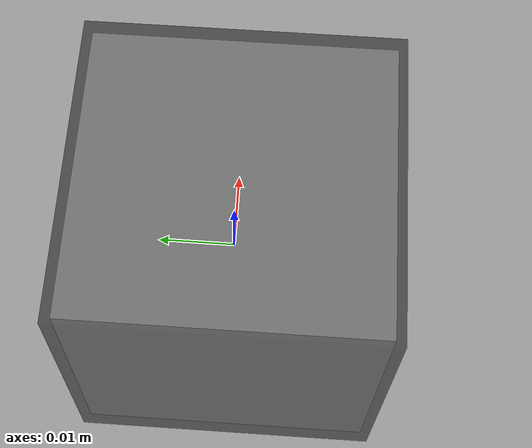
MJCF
<mujoco model="sbox-visual">
  <!-- 定义材料 -->
  <asset>
    <!-- 主体白色 -->
    <material name="white_material" rgba="1 1 1 1"/>
    <!-- 边缘黑色 -->
    <material name="black_edge" rgba="0 0 0 0.5"/>
  </asset>

  <worldbody>
    <body>
      <body name="object">
        <!-- 内部白色块 -->
        <geom pos="0 0 0" type="box" size="0.019 0.019 0.019" material="white_material" conaffinity="0" contype="0" group="1" mass="0.0001"/>
        <!-- 外部黑色半透明边缘 -->
        <geom pos="0 0 0" type="box" size="0.02 0.02 0.02" material="black_edge" conaffinity="0" contype="0" group="2" mass="0.0001"/>
      </body>
      <site rgba="0 0 0 0" size="0" pos="0 0 0" name="bottom_site"/>
      <site rgba="0 0 0 0" size="0" pos="0 0 0" name="top_site"/>
      <site rgba="0 0 0 0" size="0" pos="0 0 0" name="horizontal_radius_site"/>
    </body>
  </worldbody>
</mujoco>
